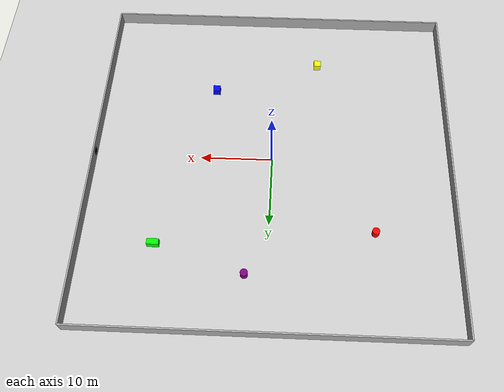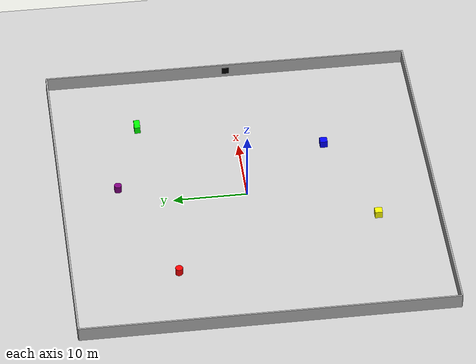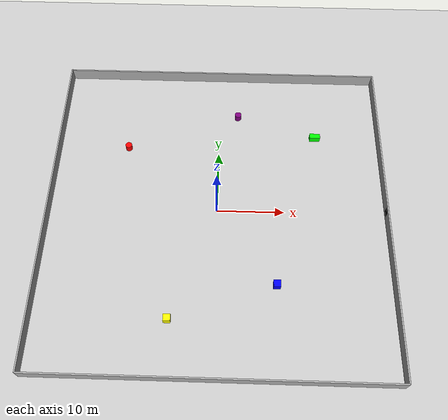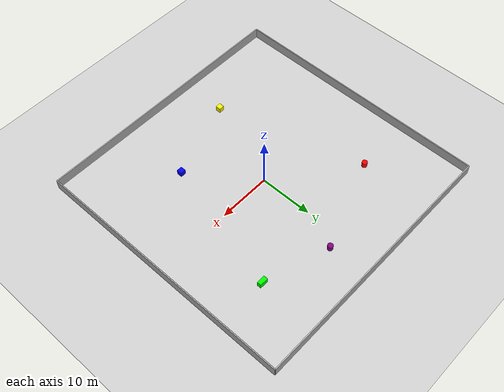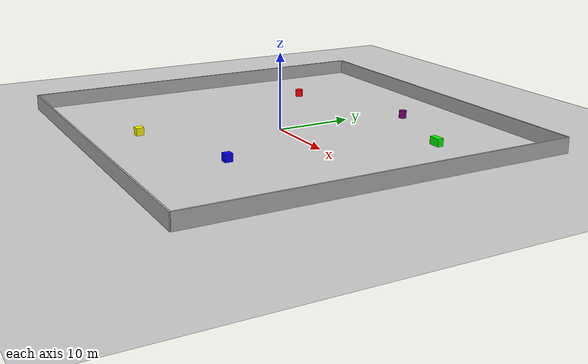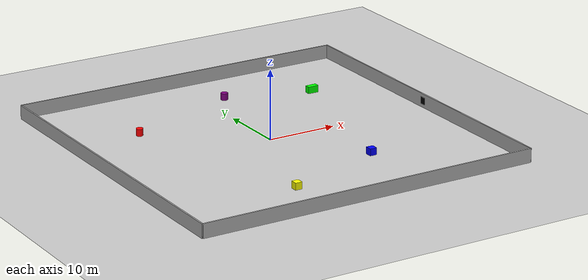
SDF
<sdf version="1.8">
  <world name="assignment_world">
    <physics name="1ms" type="ignored">
      <max_step_size>0.001</max_step_size>
      <real_time_factor>1.0</real_time_factor>
    </physics>
    <plugin
      filename="gz-sim-physics-system"
      name="gz::sim::systems::Physics">
    </plugin>
    <plugin
      filename="gz-sim-user-commands-system"
      name="gz::sim::systems::UserCommands">
    </plugin>
    <plugin
      filename="gz-sim-scene-broadcaster-system"
      name="gz::sim::systems::SceneBroadcaster">
    </plugin>
    <plugin
      filename="gz-sim-sensors-system"
      name="gz::sim::systems::Sensors">
      <render_engine>ogre2</render_engine>
    </plugin>
    <plugin
      filename="gz-sim-contact-system"
      name="gz::sim::systems::Contact">
    </plugin>

    <light type="directional" name="sun">
      <cast_shadows>true</cast_shadows>
      <pose>0 0 10 0 0 0</pose>
      <diffuse>0.8 0.8 0.8 1</diffuse>
      <specular>0.2 0.2 0.2 1</specular>
      <attenuation>
        <range>1000</range>
        <constant>0.9</constant>
        <linear>0.01</linear>
        <quadratic>0.001</quadratic>
      </attenuation>
      <direction>-0.5 0.1 -0.9</direction>
    </light>

    <model name="ground_plane">
      <static>true</static>
      <link name="ground_plane_link">
        <collision name="collision">
          <geometry>
            <plane>
              <normal>0 0 1</normal>
              <size>100 100</size>
            </plane>
          </geometry>
        </collision>
        <visual name="visual">
          <geometry>
            <plane>
              <normal>0 0 1</normal>
              <size>100 100</size>
            </plane>
          </geometry>
          <material>
            <ambient>0.8 0.8 0.8 1</ambient>
            <diffuse>0.8 0.8 0.8 1</diffuse>
            <specular>0.8 0.8 0.8 1</specular>
          </material>
        </visual>
      </link>
    </model>

    <model name="middle_walls_50x50">
      <static>true</static>
      <link name="walls_link">
        <collision name="wall_north_collision">
          <pose>0 25 1 0 0 0</pose>
          <geometry>
            <box>
              <size>50 0.2 2</size>
            </box>
          </geometry>
        </collision>
        <visual name="wall_north_visual">
          <pose>0 25 1 0 0 0</pose>
          <geometry>
            <box>
              <size>50 0.2 2</size>
            </box>
          </geometry>
          <material>
            <ambient>0.7 0.7 0.7 1</ambient>
            <diffuse>0.7 0.7 0.7 1</diffuse>
            <specular>0.2 0.2 0.2 1</specular>
          </material>
        </visual>

        <collision name="wall_south_collision">
          <pose>0 -25 1 0 0 0</pose>
          <geometry>
            <box>
              <size>50 0.2 2</size>
            </box>
          </geometry>
        </collision>
        <visual name="wall_south_visual">
          <pose>0 -25 1 0 0 0</pose>
          <geometry>
            <box>
              <size>50 0.2 2</size>
            </box>
          </geometry>
          <material>
            <ambient>0.7 0.7 0.7 1</ambient>
            <diffuse>0.7 0.7 0.7 1</diffuse>
            <specular>0.2 0.2 0.2 1</specular>
          </material>
        </visual>

        <collision name="wall_east_collision">
          <pose>25 0 1 0 0 0</pose>
          <geometry>
            <box>
              <size>0.2 50 2</size>
            </box>
          </geometry>
        </collision>
        <visual name="wall_east_visual">
          <pose>25 0 1 0 0 0</pose>
          <geometry>
            <box>
              <size>0.2 50 2</size>
            </box>
          </geometry>
          <material>
            <ambient>0.7 0.7 0.7 1</ambient>
            <diffuse>0.7 0.7 0.7 1</diffuse>
            <specular>0.2 0.2 0.2 1</specular>
          </material>
        </visual>

        <collision name="wall_west_collision">
          <pose>-25 0 1 0 0 0</pose>
          <geometry>
            <box>
              <size>0.2 50 2</size>
            </box>
          </geometry>
        </collision>
        <visual name="wall_west_visual">
          <pose>-25 0 1 0 0 0</pose>
          <geometry>
            <box>
              <size>0.2 50 2</size>
            </box>
          </geometry>
          <material>
            <ambient>0.7 0.7 0.7 1</ambient>
            <diffuse>0.7 0.7 0.7 1</diffuse>
            <specular>0.2 0.2 0.2 1</specular>
          </material>
        </visual>
      </link>
    </model>

    <model name="red_cylinder">
      <static>true</static>
      <pose>-14.2 10.8 0.5 0 0 0</pose>
      <link name="link">
        <collision name="collision">
          <geometry>
            <cylinder>
              <radius>0.5</radius>
              <length>1.0</length>
            </cylinder>
          </geometry>
        </collision>
        <visual name="visual">
          <geometry>
            <cylinder>
              <radius>0.5</radius>
              <length>1.0</length>
            </cylinder>
          </geometry>
          <material>
            <ambient>1 0 0 1</ambient>
            <diffuse>1 0 0 1</diffuse>
            <specular>0.1 0.1 0.1 1</specular>
          </material>
        </visual>
      </link>
    </model>

    <model name="blue_cube">
      <static>true</static>
      <pose>8.7 -11.6 0.5 0 0 0</pose>
      <link name="link">
        <collision name="collision">
          <geometry>
            <box>
              <size>1 1 1</size>
            </box>
          </geometry>
        </collision>
        <visual name="visual">
          <geometry>
            <box>
              <size>1 1 1</size>
            </box>
          </geometry>
          <material>
            <ambient>0 0 1 1</ambient>
            <diffuse>0 0 1 1</diffuse>
            <specular>0.1 0.1 0.1 1</specular>
          </material>
        </visual>
      </link>
    </model>

    <model name="green_cuboid">
      <static>true</static>
      <pose>15.1 13.4 0.5 0 0 0</pose>
      <link name="link">
        <collision name="collision">
          <geometry>
            <box>
              <size>1.6 0.8 1</size>
            </box>
          </geometry>
        </collision>
        <visual name="visual">
          <geometry>
            <box>
              <size>1.6 0.8 1</size>
            </box>
          </geometry>
          <material>
            <ambient>0 1 0 1</ambient>
            <diffuse>0 1 0 1</diffuse>
            <specular>0.1 0.1 0.1 1</specular>
          </material>
        </visual>
      </link>
    </model>

    <model name="yellow_cube">
      <static>true</static>
      <pose>-6.3 -16.9 0.5 0 0 0</pose>
      <link name="link">
        <collision name="collision">
          <geometry>
            <box>
              <size>1 1 1</size>
            </box>
          </geometry>
        </collision>
        <visual name="visual">
          <geometry>
            <box>
              <size>1 1 1</size>
            </box>
          </geometry>
          <material>
            <ambient>1 1 0 1</ambient>
            <diffuse>1 1 0 1</diffuse>
            <specular>0.1 0.1 0.1 1</specular>
          </material>
        </visual>
      </link>
    </model>

    <model name="purple_cylinder">
      <static>true</static>
      <pose>2.9 17.2 0.5 0 0 0</pose>
      <link name="link">
        <collision name="collision">
          <geometry>
            <cylinder>
              <radius>0.5</radius>
              <length>1.0</length>
            </cylinder>
          </geometry>
        </collision>
        <visual name="visual">
          <geometry>
            <cylinder>
              <radius>0.5</radius>
              <length>1.0</length>
            </cylinder>
          </geometry>
          <material>
            <ambient>0.5 0 0.5 1</ambient>
            <diffuse>0.5 0 0.5 1</diffuse>
            <specular>0.1 0.1 0.1 1</specular>
          </material>
        </visual>
      </link>
    </model>

    <model name="black_square_east_wall">
      <static>true</static>
      <pose>24.89 0 1 0 0 0</pose>
      <link name="link">
        <collision name="collision">
          <geometry>
            <box>
              <size>1 0.02 1</size>
            </box>
          </geometry>
        </collision>
        <visual name="visual">
          <geometry>
            <box>
              <size>0.02 1 1</size>
            </box>
          </geometry>
          <material>
            <ambient>0 0 0 1</ambient>
            <diffuse>0 0 0 1</diffuse>
            <specular>0.05 0.05 0.05 1</specular>
          </material>
        </visual>
      </link>
    </model>

  </world>
</sdf>
